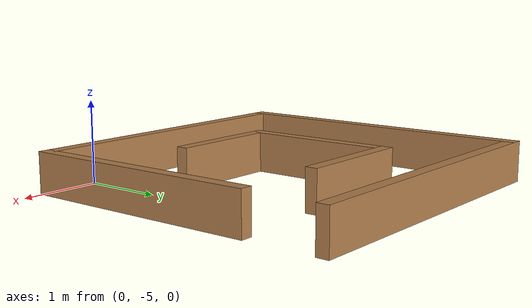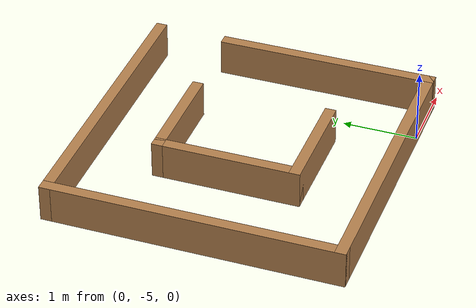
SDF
<?xml version='1.0'?>
<sdf version='1.6'>
  <model name='world1'>
    <pose frame=''>-1.245 -3.035 0 0 -0 0</pose>
    <link name='Wall_0'>
      <collision name='Wall_0_Collision'>
        <geometry>
          <box>
            <size>4 0.15 0.5</size>
          </box>
        </geometry>
        <pose frame=''>0 0 0.25 0 -0 0</pose>
      </collision>
      <visual name='Wall_0_Visual'>
        <pose frame=''>0 0 0.25 0 -0 0</pose>
        <geometry>
          <box>
            <size>4 0.15 0.5</size>
          </box>
        </geometry>
        <material>
          <script>
            <uri>file://media/materials/scripts/gazebo.material</uri>
            <name>Gazebo/Wood</name>
          </script>
          <ambient>1 1 1 1</ambient>
        </material>
        <meta>
          <layer>0</layer>
        </meta>
      </visual>
      <pose frame=''>0 1.925 0 0 -0 3.14159</pose>
    </link>
    <link name='Wall_1'>
      <collision name='Wall_1_Collision'>
        <geometry>
          <box>
            <size>4 0.15 0.5</size>
          </box>
        </geometry>
        <pose frame=''>0 0 0.25 0 -0 0</pose>
      </collision>
      <visual name='Wall_1_Visual'>
        <pose frame=''>0 0 0.25 0 -0 0</pose>
        <geometry>
          <box>
            <size>4 0.15 0.5</size>
          </box>
        </geometry>
        <material>
          <script>
            <uri>file://media/materials/scripts/gazebo.material</uri>
            <name>Gazebo/Wood</name>
          </script>
          <ambient>1 1 1 1</ambient>
        </material>
        <meta>
          <layer>0</layer>
        </meta>
      </visual>
      <pose frame=''>-1.925 0 0 0 -0 -1.5708</pose>
    </link>
    <link name='Wall_2'>
      <collision name='Wall_2_Collision'>
        <geometry>
          <box>
            <size>4 0.15 0.5</size>
          </box>
        </geometry>
        <pose frame=''>0 0 0.25 0 -0 0</pose>
      </collision>
      <visual name='Wall_2_Visual'>
        <pose frame=''>0 0 0.25 0 -0 0</pose>
        <geometry>
          <box>
            <size>4 0.15 0.5</size>
          </box>
        </geometry>
        <material>
          <script>
            <uri>file://media/materials/scripts/gazebo.material</uri>
            <name>Gazebo/Wood</name>
          </script>
          <ambient>1 1 1 1</ambient>
        </material>
        <meta>
          <layer>0</layer>
        </meta>
      </visual>
      <pose frame=''>0 -1.925 0 0 -0 0</pose>
    </link>
    <link name='Wall_3'>
      <collision name='Wall_3_Collision'>
        <geometry>
          <box>
            <size>3 0.15 0.5</size>
          </box>
        </geometry>
        <pose frame=''>0 0 0.25 0 -0 0</pose>
      </collision>
      <visual name='Wall_3_Visual'>
        <pose frame=''>0 0 0.25 0 -0 0</pose>
        <geometry>
          <box>
            <size>3 0.15 0.5</size>
          </box>
        </geometry>
        <material>
          <script>
            <uri>file://media/materials/scripts/gazebo.material</uri>
            <name>Gazebo/Wood</name>
          </script>
          <ambient>1 1 1 1</ambient>
        </material>
        <meta>
          <layer>0</layer>
        </meta>
      </visual>
      <pose frame=''>1.925 -0.5 0 0 -0 1.5708</pose>
    </link>
    <link name='Wall_5'>
      <collision name='Wall_5_Collision'>
        <geometry>
          <box>
            <size>1.5 0.15 0.5</size>
          </box>
        </geometry>
        <pose frame=''>0 0 0.25 0 -0 0</pose>
      </collision>
      <visual name='Wall_5_Visual'>
        <pose frame=''>0 0 0.25 0 -0 0</pose>
        <geometry>
          <box>
            <size>1.5 0.15 0.5</size>
          </box>
        </geometry>
        <material>
          <script>
            <uri>file://media/materials/scripts/gazebo.material</uri>
            <name>Gazebo/Wood</name>
          </script>
          <ambient>1 1 1 1</ambient>
        </material>
        <meta>
          <layer>0</layer>
        </meta>
      </visual>
      <pose frame=''>0.07 0.945 0 0 -0 3.14159</pose>
    </link>
    <link name='Wall_6'>
      <collision name='Wall_6_Collision'>
        <geometry>
          <box>
            <size>2 0.15 0.5</size>
          </box>
        </geometry>
        <pose frame=''>0 0 0.25 0 -0 0</pose>
      </collision>
      <visual name='Wall_6_Visual'>
        <pose frame=''>0 0 0.25 0 -0 0</pose>
        <geometry>
          <box>
            <size>2 0.15 0.5</size>
          </box>
        </geometry>
        <material>
          <script>
            <uri>file://media/materials/scripts/gazebo.material</uri>
            <name>Gazebo/Wood</name>
          </script>
          <ambient>1 1 1 1</ambient>
        </material>
        <meta>
          <layer>0</layer>
        </meta>
      </visual>
      <pose frame=''>-0.605 0.02 0 0 -0 -1.5708</pose>
    </link>
    <link name='Wall_7'>
      <collision name='Wall_7_Collision'>
        <geometry>
          <box>
            <size>1.5 0.15 0.5</size>
          </box>
        </geometry>
        <pose frame=''>0 0 0.25 0 -0 0</pose>
      </collision>
      <visual name='Wall_7_Visual'>
        <pose frame=''>0 0 0.25 0 -0 0</pose>
        <geometry>
          <box>
            <size>1.5 0.15 0.5</size>
          </box>
        </geometry>
        <material>
          <script>
            <uri>file://media/materials/scripts/gazebo.material</uri>
            <name>Gazebo/Wood</name>
          </script>
          <ambient>1 1 1 1</ambient>
        </material>
        <meta>
          <layer>0</layer>
        </meta>
      </visual>
      <pose frame=''>0.07 -0.905 0 0 -0 0</pose>
    </link>
    <static>1</static>
  </model>
</sdf>
